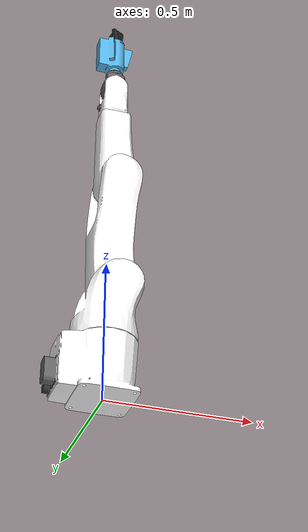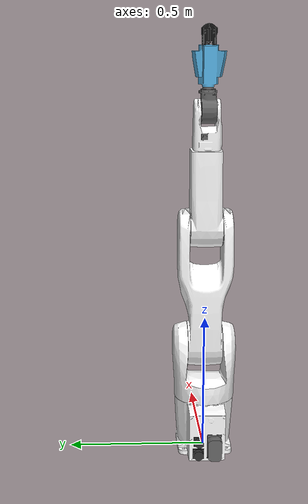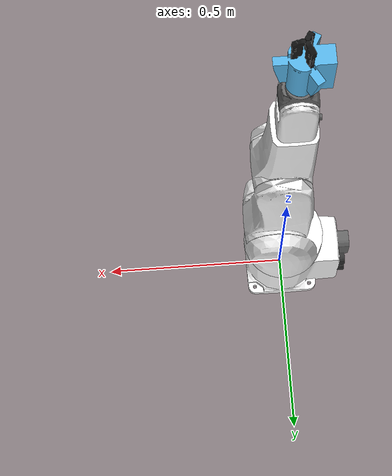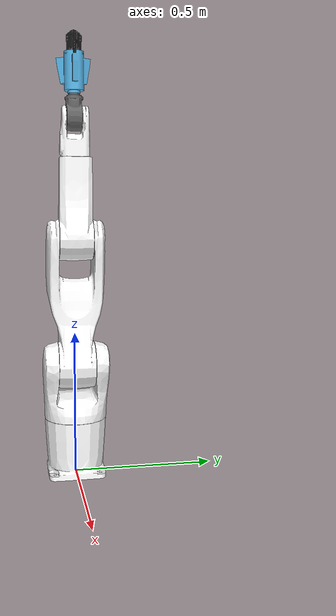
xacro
<?xml version="1.0"?>
<robot name="vs087" xmlns:xacro="http://ros.org/wiki/xacro">
  <xacro:include filename="$(find denso_robot_descriptions)/vs087_description/vs087/vs087.urdf.xacro"/>
  <xacro:include filename="$(find mhand_description)/robots/mhand.urdf.xacro"/>

  <joint name="gripper_joint" type="fixed">
    <origin xyz="0 0 0" rpy="0 0 0"/>
  <parent link="J6"/>
  <child link="hand_link"/>
  </joint>

</robot>

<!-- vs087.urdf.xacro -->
<robot name="vs087">
  	<gazebo>
		<plugin filename="libgazebo_ros_control.so" name="gazebo_ros_control">
			<robotNamespace>/vs087</robotNamespace>
		</plugin>
	</gazebo>
	<link name="world" />
	<joint name="joint_w" type="fixed">
		<parent link="world" />
		<child link="base_link" />
	</joint>
	<link name="base_link">
		<visual>
			<origin rpy="0 0 0" xyz="0 0 0" />
			<geometry>
				<mesh filename="package://denso_robot_descriptions/vs087_description/vs087/meshes/base_link.dae" scale="1 1 1" />
			</geometry>
		</visual>
		<collision>
			<origin rpy="0 0 0" xyz="0 0 0" />
			<geometry>
				<mesh filename="package://denso_robot_descriptions/vs087_description/vs087/meshes/base_link.dae" scale="1 1 1" />
			</geometry>
		</collision>
		<inertial>
			<mass value="1" />
			<origin rpy="0.000000 0.000000 0.000000" xyz="0.000000 0.000000 0.000000" />
			<inertia ixx="1" ixy="0" ixz="0" iyy="1" iyz="0" izz="1" />
		</inertial>
	</link>
	<link name="J1">
		<visual>
			<origin rpy="0 0 0" xyz="0 0 0" />
			<geometry>
				<mesh filename="package://denso_robot_descriptions/vs087_description/vs087/meshes/J1.dae" scale="1 1 1" />
			</geometry>
		</visual>
		<collision>
			<origin rpy="0 0 0" xyz="0 0 0" />
			<geometry>
				<mesh filename="package://denso_robot_descriptions/vs087_description/vs087/meshes/J1.dae" scale="1 1 1" />
			</geometry>
		</collision>
		<inertial>
			<mass value="1" />
			<origin rpy="0.000000 0.000000 0.000000" xyz="0.000000 0.000000 0.000000" />
			<inertia ixx="1" ixy="0" ixz="0" iyy="1" iyz="0" izz="1" />
		</inertial>
	</link>
	<joint name="joint_1" type="revolute">
		<parent link="base_link" />
		<child link="J1" />
		<origin rpy="0.000000 0.000000 0.000000" xyz="0.000000 0.000000 0.197500" />
		<axis xyz="-0.000000 -0.000000 1.000000" />

		<limit effort="1" lower="-2.96426720159" upper="2.96444173451" velocity="3.14159265358979" />
		<dynamics damping="0" friction="0" />
	</joint>
	<transmission name="trans_1">
		<type>transmission_interface/SimpleTransmission</type>
		<joint name="joint_1">
			<hardwareInterface>hardware_interface/PositionJointInterface</hardwareInterface>
		</joint>
		<actuator name="motor_1">
			<hardwareInterface>hardware_interface/PositionJointInterface</hardwareInterface>
			<mechanicalReduction>1</mechanicalReduction>
		</actuator>
	</transmission>
	<link name="J2">
		<visual>
			<origin rpy="0 0 0" xyz="0 0 0" />
			<geometry>
				<mesh filename="package://denso_robot_descriptions/vs087_description/vs087/meshes/J2.dae" scale="1 1 1" />
			</geometry>
		</visual>
		<collision>
			<origin rpy="0 0 0" xyz="0 0 0" />
			<geometry>
				<mesh filename="package://denso_robot_descriptions/vs087_description/vs087/meshes/J2.dae" scale="1 1 1" />
			</geometry>
		</collision>
		<inertial>
			<mass value="1" />
			<origin rpy="0.000000 0.000000 0.000000" xyz="0.000000 0.000000 0.000000" />
			<inertia ixx="1" ixy="0" ixz="0" iyy="1" iyz="0" izz="1" />
		</inertial>
	</link>
	<joint name="joint_2" type="revolute">
		<parent link="J1" />
		<child link="J2" />

		<origin rpy="0.000000 0.000000 0.000000" xyz="0.030000 0.000000 0.197500" />
		<axis xyz="-0.000000 1.000000 -0.000000" />

		<limit effort="1" lower="-1.7453117987" upper="2.35601995727" velocity="2.87979326579064" />
		<dynamics damping="0" friction="0" />
	</joint>
	<transmission name="trans_2">
		<type>transmission_interface/SimpleTransmission</type>
		<joint name="joint_2">
			<hardwareInterface>hardware_interface/PositionJointInterface</hardwareInterface>
		</joint>
		<actuator name="motor_2">
			<hardwareInterface>hardware_interface/PositionJointInterface</hardwareInterface>
			<mechanicalReduction>1</mechanicalReduction>
		</actuator>
	</transmission>
	<link name="J3">
		<visual>
			<origin rpy="0 0 0" xyz="0 0 0" />
			<geometry>
				<mesh filename="package://denso_robot_descriptions/vs087_description/vs087/meshes/J3.dae" scale="1 1 1" />
			</geometry>
		</visual>
		<collision>
			<origin rpy="0 0 0" xyz="0 0 0" />
			<geometry>
				<mesh filename="package://denso_robot_descriptions/vs087_description/vs087/meshes/J3.dae" scale="1 1 1" />
			</geometry>
		</collision>
		<inertial>
			<mass value="1" />
			<origin rpy="0.000000 0.000000 0.000000" xyz="0.000000 0.000000 0.000000" />
			<inertia ixx="1" ixy="0" ixz="0" iyy="1" iyz="0" izz="1" />
		</inertial>
	</link>
	<joint name="joint_3" type="revolute">
		<parent link="J2" />
		<child link="J3" />

		<origin rpy="0.000000 0.000000 0.000000" xyz="0.000000 0.000000 0.445000" />
		<axis xyz="-0.000000 1.000000 -0.000000" />

		<limit effort="1" lower="-1.1836822987" upper="2.54469004941" velocity="3.45575191894877" />
		<dynamics damping="0" friction="0" />
	</joint>
	<transmission name="trans_3">
		<type>transmission_interface/SimpleTransmission</type>
		<joint name="joint_3">
			<hardwareInterface>hardware_interface/PositionJointInterface</hardwareInterface>
		</joint>
		<actuator name="motor_3">
			<hardwareInterface>hardware_interface/PositionJointInterface</hardwareInterface>
			<mechanicalReduction>1</mechanicalReduction>
		</actuator>
	</transmission>
	<link name="J4">
		<visual>
			<origin rpy="0 0 0" xyz="0 0 0" />
			<geometry>
				<mesh filename="package://denso_robot_descriptions/vs087_description/vs087/meshes/J4.dae" scale="1 1 1" />
			</geometry>
		</visual>
		<collision>
			<origin rpy="0 0 0" xyz="0 0 0" />
			<geometry>
				<mesh filename="package://denso_robot_descriptions/vs087_description/vs087/meshes/J4.dae" scale="1 1 1" />
			</geometry>
		</collision>
		<inertial>
			<mass value="1" />
			<origin rpy="0.000000 0.000000 0.000000" xyz="0.000000 0.000000 0.000000" />
			<inertia ixx="1" ixy="0" ixz="0" iyy="1" iyz="0" izz="1" />
		</inertial>
	</link>
	<joint name="joint_4" type="revolute">
		<parent link="J3" />
		<child link="J4" />
		<origin rpy="0.000000 0.000000 0.000000" xyz="-0.020000 0.000000 0.287000" />
		<axis xyz="-0.000000 -0.000000 1.000000" />

		<limit effort="1" lower="-3.14421064747" upper="3.13042254638" velocity="4.31968989868597" />
		<dynamics damping="0" friction="0" />
	</joint>
	<transmission name="trans_4">
		<type>transmission_interface/SimpleTransmission</type>
		<joint name="joint_4">
			<hardwareInterface>hardware_interface/PositionJointInterface</hardwareInterface>
		</joint>
		<actuator name="motor_4">
			<hardwareInterface>hardware_interface/PositionJointInterface</hardwareInterface>
			<mechanicalReduction>1</mechanicalReduction>
		</actuator>
	</transmission>
	<link name="J5">
		<visual>
			<origin rpy="0 0 0" xyz="0 0 0" />
			<geometry>
				<mesh filename="package://denso_robot_descriptions/vs087_description/vs087/meshes/J5.dae" scale="1 1 1" />
			</geometry>
		</visual>
		<collision>
			<origin rpy="0 0 0" xyz="0 0 0" />
			<geometry>
				<mesh filename="package://denso_robot_descriptions/vs087_description/vs087/meshes/J5.dae" scale="1 1 1" />
			</geometry>
		</collision>
		<inertial>
			<mass value="1" />
			<origin rpy="0.000000 0.000000 0.000000" xyz="0.000000 0.000000 0.000000" />
			<inertia ixx="1" ixy="0" ixz="0" iyy="1" iyz="0" izz="1" />
		</inertial>
	</link>
	<joint name="joint_5" type="revolute">
		<parent link="J4" />
		<child link="J5" />
		<origin rpy="0.000000 0.000000 0.000000" xyz="0.000000 0.000000 0.143000" />
		<axis xyz="-0.000000 1.000000 -0.000000" />

		<limit effort="1" lower="-0.165806278939" upper="1.73677713866" velocity="4.31968989868597" />
		<dynamics damping="0" friction="0" />
	</joint>
	<transmission name="trans_5">
		<type>transmission_interface/SimpleTransmission</type>
		<joint name="joint_5">
			<hardwareInterface>hardware_interface/PositionJointInterface</hardwareInterface>
		</joint>
		<actuator name="motor_5">
			<hardwareInterface>hardware_interface/PositionJointInterface</hardwareInterface>
			<mechanicalReduction>1</mechanicalReduction>
		</actuator>
	</transmission>
	<link name="J6">
		<visual>
			<origin rpy="0 0 0" xyz="0 0 0" />
			<geometry>
				<mesh filename="package://denso_robot_descriptions/vs087_description/vs087/meshes/J6.dae" scale="1 1 1" />
			</geometry>
		</visual>
		<collision>
			<origin rpy="0 0 0" xyz="0 0 0" />
			<geometry>
				<mesh filename="package://denso_robot_descriptions/vs087_description/vs087/meshes/J6.dae" scale="1 1 1" />
			</geometry>
		</collision>
		<inertial>
			<mass value="1" />
			<origin rpy="0.000000 0.000000 0.000000" xyz="0.000000 0.000000 0.000000" />
			<inertia ixx="1" ixy="0" ixz="0" iyy="1" iyz="0" izz="1" />
		</inertial>
	</link>
	<joint name="joint_6" type="revolute">
		<parent link="J5" />
		<child link="J6" />
		<origin rpy="0.000000 0.000000 0.000000" xyz="0.000000 0.000000 0.080000" />
		<axis xyz="-0.000000 -0.000000 1.000000" />

		<limit effort="1" lower="0.0" upper="6.283185" velocity="6.91150383789755" />
		<dynamics damping="0" friction="0" />
	</joint>
	<transmission name="trans_6">
		<type>transmission_interface/SimpleTransmission</type>
		<joint name="joint_6">
			<hardwareInterface>hardware_interface/PositionJointInterface</hardwareInterface>
		</joint>
		<actuator name="motor_6">
			<hardwareInterface>hardware_interface/PositionJointInterface</hardwareInterface>
			<mechanicalReduction>1</mechanicalReduction>
		</actuator>
	</transmission>
</robot>

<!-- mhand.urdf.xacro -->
<robot name="mhand" xmlns:xacro="http://ros.org/wiki/xacro">

  <xacro:include filename="$(find mhand_description)/urdf/mhand_body/mhand_body.urdf.xacro"/>
  <xacro:include filename="$(find mhand_description)/urdf/mhand_finger/mhand_finger.urdf.xacro"/>

  <!-- =============== Link & Joint =============== -->
  <!-- mhand_body -->
  <link name="hand_link"/>

  <xacro:mhand_body_v0 parent="hand_link">
    <origin xyz="0 0 0"/>
  </xacro:mhand_body_v0>

  <!-- mhand_finger -->
  <xacro:mhand_finger_v0 suffix="A" parent="mhand_body_link">
    <origin xyz="0.0215 0 0.135" rpy="3.14 -1.57 0"/>
    <axis xyz="0 1 0"/>
  </xacro:mhand_finger_v0>

  <xacro:mhand_finger_v0 suffix="B" parent="mhand_body_link">
    <origin xyz="-0.01075 -0.01862 0.135" rpy="3.14 -1.57 -2.09"/>
    <axis xyz="0 1 0"/>
  </xacro:mhand_finger_v0>

  <xacro:mhand_finger_v0 suffix="C" parent="mhand_body_link">
    <origin xyz="-0.01075 0.01862 0.135" rpy="3.14 -1.57 2.09"/>
    <axis xyz="0 1 0"/>
  </xacro:mhand_finger_v0>

</robot>

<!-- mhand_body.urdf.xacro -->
<robot xmlns:xacro="http://ros.org/wiki/xacro">

  <xacro:macro name="mhand_body_v0" params="parent *joint_origin">
    <joint name="mhand_link_joint" type="fixed">
      <xacro:insert_block name="joint_origin"/>
      <parent link="${parent}"/>
      <child link="mhand_body_link"/>
    </joint>

    <link name="mhand_body_link">
      <visual>
	<geometry>
	  <mesh filename="package://mhand_description/meshes/DAE/mhand_body_origin.dae"/>
	</geometry>
      </visual>
      <collision>
	<geometry>
	  <mesh filename="package://mhand_description/meshes/STL/mhand_body.stl"/>
	</geometry>
      </collision>
      <inertial>
	<origin xyz="0 0 0"/>
	<mass value="0.968"/>
	<inertia ixx="0.002" ixy="0.0" ixz="0.0"
		 iyy="0.003" iyz="0.0"
		 izz="0.001" />
      </inertial>
    </link>
  </xacro:macro>

</robot>

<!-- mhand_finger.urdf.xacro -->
<robot xmlns:xacro="http://ros.org/wiki/xacro">

  <xacro:include filename="$(find mhand_description)/urdf/mhand_finger/mhand_finger.transmission.xacro"/>

  <xacro:macro name="mhand_finger_v0" params="suffix parent *joint_origin *joint_axis">
	<joint name="finger_${suffix}_joint" type="revolute">
	  <xacro:insert_block name="joint_origin"/>
	  <parent link="${parent}"/>
	  <child link="mhand_finger_${suffix}"/>
	  <xacro:insert_block name="joint_axis"/>
	  <limit lower="-1.22" upper="0" effort="0.5293" velocity="6.159937255" />
	</joint>

	<link name="mhand_finger_${suffix}">
	  <visual>
	    <geometry>
	      <mesh filename="package://mhand_description/meshes/DAE/mhand_finger.dae"/>
	    </geometry>
	  </visual>
	  <collision>
	    <geometry>
	      <mesh filename="package://mhand_description/meshes/STL/mhand_finger.stl"/>
	    </geometry>
	  </collision>
	  <inertial>
	    <origin xyz="0 0 0"/>
	    <mass value="0.968"/>
	    <inertia ixx="0.002" ixy="0.0" ixz="0.0"
		     iyy="0.003" iyz="0.0"
		     izz="0.001" />
	  </inertial>
	</link>
	<xacro:finger_transmission suffix="${suffix}"/>
  </xacro:macro>

</robot>
